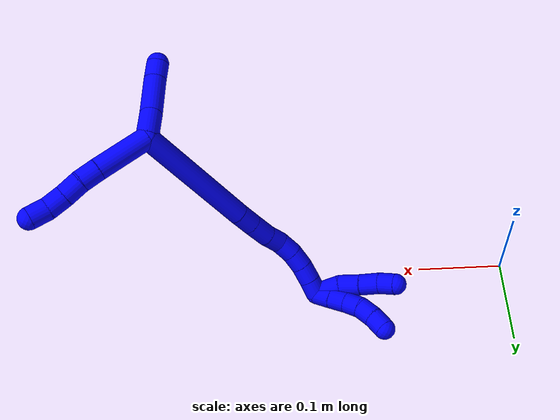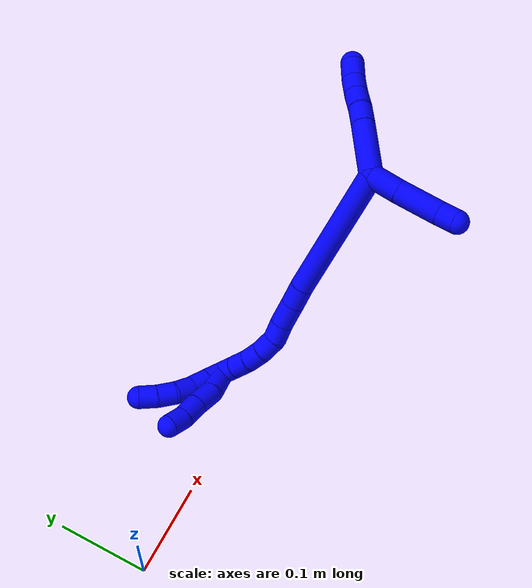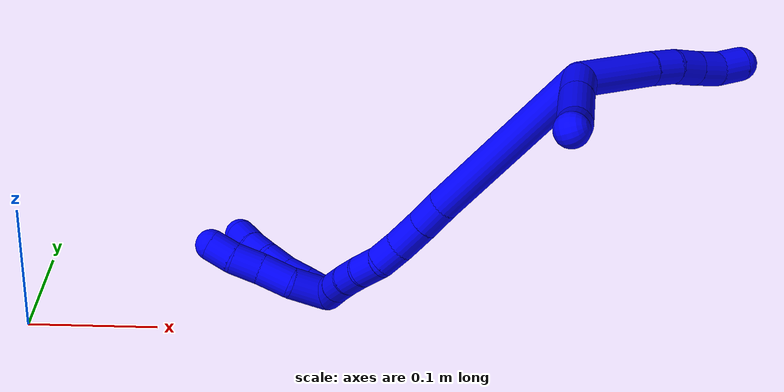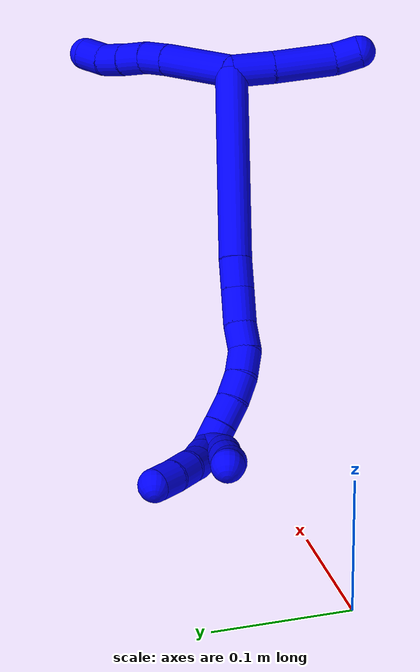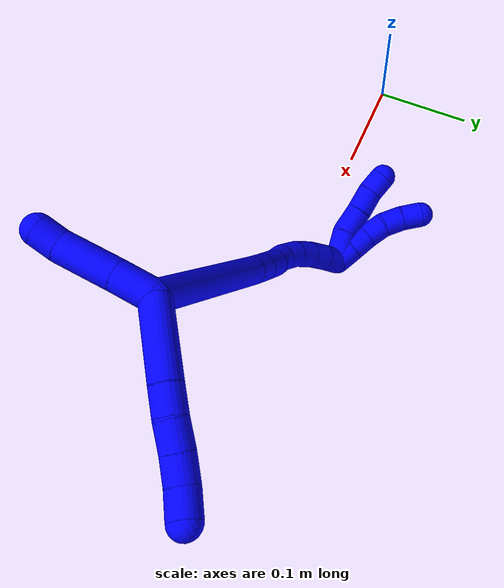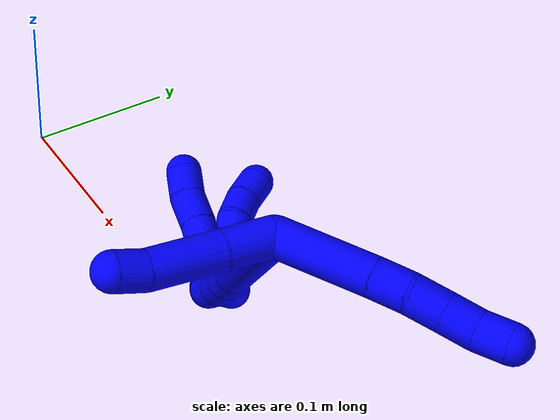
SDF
<sdf version="1.7">
 <world name="default">
  <model name="1">
   <static>0</static>
   <link name="1">
    <collision name="collision-cylinder-e_1_2_8">
     <pose>-0.022608 0.013577 0.016734 -0.681614 -0.809376 0.301505</pose>
     <geometry><cylinder><radius>0.0125</radius><length>0.062465</length></cylinder></geometry>
     <surface>
      <friction><ode><mu>1.16</mu><mu2>1.16</mu2><slip1>0</slip1><slip2>0</slip2></ode></friction>
      <contact><ode><kp>1e+06</kp><kd>1</kd><max_vel>0</max_vel><min_depth>0.001</min_depth></ode></contact>
     </surface>
    </collision>
    <visual name="visual-cylinder-e_1_2_8">
     <pose>-0.022608 0.013577 0.016734 -0.681614 -0.809376 0.301505</pose>
     <geometry><cylinder><radius>0.0125</radius><length>0.062465</length></cylinder></geometry>
     <material><ambient>0 0 1 1</ambient></material>
    </visual>
    <collision name="collision-cylinder-e_2_8_9">
     <pose>-0.053196 0.032397 0.039077 -0.751713 -0.804674 0.332753</pose>
     <geometry><cylinder><radius>0.0125</radius><length>0.022149</length></cylinder></geometry>
     <surface>
      <friction><ode><mu>1.16</mu><mu2>1.16</mu2><slip1>0</slip1><slip2>0</slip2></ode></friction>
      <contact><ode><kp>1e+06</kp><kd>1</kd><max_vel>0</max_vel><min_depth>0.001</min_depth></ode></contact>
     </surface>
    </collision>
    <visual name="visual-cylinder-e_2_8_9">
     <pose>-0.053196 0.032397 0.039077 -0.751713 -0.804674 0.332753</pose>
     <geometry><cylinder><radius>0.0125</radius><length>0.022149</length></cylinder></geometry>
     <material><ambient>0 0 1 1</ambient></material>
    </visual>
    <collision name="collision-cylinder-e_3_9_10">
     <pose>-0.069044 0.044118 0.04906 -0.976915 -0.788754 0.435317</pose>
     <geometry><cylinder><radius>0.0125</radius><length>0.022179</length></cylinder></geometry>
     <surface>
      <friction><ode><mu>1.16</mu><mu2>1.16</mu2><slip1>0</slip1><slip2>0</slip2></ode></friction>
      <contact><ode><kp>1e+06</kp><kd>1</kd><max_vel>0</max_vel><min_depth>0.001</min_depth></ode></contact>
     </surface>
    </collision>
    <visual name="visual-cylinder-e_3_9_10">
     <pose>-0.069044 0.044118 0.04906 -0.976915 -0.788754 0.435317</pose>
     <geometry><cylinder><radius>0.0125</radius><length>0.022179</length></cylinder></geometry>
     <material><ambient>0 0 1 1</ambient></material>
    </visual>
    <collision name="collision-cylinder-e_4_10_11">
     <pose>-0.084325 0.056676 0.058402 -0.885649 -0.756585 0.372584</pose>
     <geometry><cylinder><radius>0.0125</radius><length>0.0216</length></cylinder></geometry>
     <surface>
      <friction><ode><mu>1.16</mu><mu2>1.16</mu2><slip1>0</slip1><slip2>0</slip2></ode></friction>
      <contact><ode><kp>1e+06</kp><kd>1</kd><max_vel>0</max_vel><min_depth>0.001</min_depth></ode></contact>
     </surface>
    </collision>
    <visual name="visual-cylinder-e_4_10_11">
     <pose>-0.084325 0.056676 0.058402 -0.885649 -0.756585 0.372584</pose>
     <geometry><cylinder><radius>0.0125</radius><length>0.0216</length></cylinder></geometry>
     <material><ambient>0 0 1 1</ambient></material>
    </visual>
    <collision name="collision-cylinder-e_5_11_6">
     <pose>-0.099255 0.066833 0.069976 -0.552991 -0.76944 0.228786</pose>
     <geometry><cylinder><radius>0.0125</radius><length>0.021607</length></cylinder></geometry>
     <surface>
      <friction><ode><mu>1.16</mu><mu2>1.16</mu2><slip1>0</slip1><slip2>0</slip2></ode></friction>
      <contact><ode><kp>1e+06</kp><kd>1</kd><max_vel>0</max_vel><min_depth>0.001</min_depth></ode></contact>
     </surface>
    </collision>
    <visual name="visual-cylinder-e_5_11_6">
     <pose>-0.099255 0.066833 0.069976 -0.552991 -0.76944 0.228786</pose>
     <geometry><cylinder><radius>0.0125</radius><length>0.021607</length></cylinder></geometry>
     <material><ambient>0 0 1 1</ambient></material>
    </visual>
    <collision name="collision-cylinder-e_1_2_12">
     <pose>0.015794 -0.00089 0.002748 0.313049 1.38991 0.261639</pose>
     <geometry><cylinder><radius>0.0125</radius><length>0.032112</length></cylinder></geometry>
     <surface>
      <friction><ode><mu>1.16</mu><mu2>1.16</mu2><slip1>0</slip1><slip2>0</slip2></ode></friction>
      <contact><ode><kp>1e+06</kp><kd>1</kd><max_vel>0</max_vel><min_depth>0.001</min_depth></ode></contact>
     </surface>
    </collision>
    <visual name="visual-cylinder-e_1_2_12">
     <pose>0.015794 -0.00089 0.002748 0.313049 1.38991 0.261639</pose>
     <geometry><cylinder><radius>0.0125</radius><length>0.032112</length></cylinder></geometry>
     <material><ambient>0 0 1 1</ambient></material>
    </visual>
    <collision name="collision-cylinder-e_2_12_13">
     <pose>0.054817 -0.003467 0.010497 0.32549 1.34739 0.260667</pose>
     <geometry><cylinder><radius>0.0125</radius><length>0.047643</length></cylinder></geometry>
     <surface>
      <friction><ode><mu>1.16</mu><mu2>1.16</mu2><slip1>0</slip1><slip2>0</slip2></ode></friction>
      <contact><ode><kp>1e+06</kp><kd>1</kd><max_vel>0</max_vel><min_depth>0.001</min_depth></ode></contact>
     </surface>
    </collision>
    <visual name="visual-cylinder-e_2_12_13">
     <pose>0.054817 -0.003467 0.010497 0.32549 1.34739 0.260667</pose>
     <geometry><cylinder><radius>0.0125</radius><length>0.047643</length></cylinder></geometry>
     <material><ambient>0 0 1 1</ambient></material>
    </visual>
    <collision name="collision-cylinder-e_3_13_5">
     <pose>0.087476 -0.008098 0.017709 0.926416 1.19846 0.657501</pose>
     <geometry><cylinder><radius>0.0125</radius><length>0.020245</length></cylinder></geometry>
     <surface>
      <friction><ode><mu>1.16</mu><mu2>1.16</mu2><slip1>0</slip1><slip2>0</slip2></ode></friction>
      <contact><ode><kp>1e+06</kp><kd>1</kd><max_vel>0</max_vel><min_depth>0.001</min_depth></ode></contact>
     </surface>
    </collision>
    <visual name="visual-cylinder-e_3_13_5">
     <pose>0.087476 -0.008098 0.017709 0.926416 1.19846 0.657501</pose>
     <geometry><cylinder><radius>0.0125</radius><length>0.020245</length></cylinder></geometry>
     <material><ambient>0 0 1 1</ambient></material>
    </visual>
    <collision name="collision-cylinder-e_1_2_14">
     <pose>0.004584 0.031545 -0.066743 -2.70007 0.062015 -0.274685</pose>
     <geometry><cylinder><radius>0.0125</radius><length>0.147928</length></cylinder></geometry>
     <surface>
      <friction><ode><mu>1.16</mu><mu2>1.16</mu2><slip1>0</slip1><slip2>0</slip2></ode></friction>
      <contact><ode><kp>1e+06</kp><kd>1</kd><max_vel>0</max_vel><min_depth>0.001</min_depth></ode></contact>
     </surface>
    </collision>
    <visual name="visual-cylinder-e_1_2_14">
     <pose>0.004584 0.031545 -0.066743 -2.70007 0.062015 -0.274685</pose>
     <geometry><cylinder><radius>0.0125</radius><length>0.147928</length></cylinder></geometry>
     <material><ambient>0 0 1 1</ambient></material>
    </visual>
    <collision name="collision-cylinder-e_2_14_15">
     <pose>0.010535 0.06832 -0.143958 -2.67842 0.116296 -0.484044</pose>
     <geometry><cylinder><radius>0.0125</radius><length>0.023572</length></cylinder></geometry>
     <surface>
      <friction><ode><mu>1.16</mu><mu2>1.16</mu2><slip1>0</slip1><slip2>0</slip2></ode></friction>
      <contact><ode><kp>1e+06</kp><kd>1</kd><max_vel>0</max_vel><min_depth>0.001</min_depth></ode></contact>
     </surface>
    </collision>
    <visual name="visual-cylinder-e_2_14_15">
     <pose>0.010535 0.06832 -0.143958 -2.67842 0.116296 -0.484044</pose>
     <geometry><cylinder><radius>0.0125</radius><length>0.023572</length></cylinder></geometry>
     <material><ambient>0 0 1 1</ambient></material>
    </visual>
    <collision name="collision-cylinder-e_3_15_16">
     <pose>0.013372 0.079225 -0.166692 -2.70813 0.108318 -0.482816</pose>
     <geometry><cylinder><radius>0.0125</radius><length>0.02718</length></cylinder></geometry>
     <surface>
      <friction><ode><mu>1.16</mu><mu2>1.16</mu2><slip1>0</slip1><slip2>0</slip2></ode></friction>
      <contact><ode><kp>1e+06</kp><kd>1</kd><max_vel>0</max_vel><min_depth>0.001</min_depth></ode></contact>
     </surface>
    </collision>
    <visual name="visual-cylinder-e_3_15_16">
     <pose>0.013372 0.079225 -0.166692 -2.70813 0.108318 -0.482816</pose>
     <geometry><cylinder><radius>0.0125</radius><length>0.02718</length></cylinder></geometry>
     <material><ambient>0 0 1 1</ambient></material>
    </visual>
    <collision name="collision-cylinder-e_4_16_17">
     <pose>0.016986 0.088369 -0.18835 -2.78792 0.210942 -1.06963</pose>
     <geometry><cylinder><radius>0.0125</radius><length>0.020488</length></cylinder></geometry>
     <surface>
      <friction><ode><mu>1.16</mu><mu2>1.16</mu2><slip1>0</slip1><slip2>0</slip2></ode></friction>
      <contact><ode><kp>1e+06</kp><kd>1</kd><max_vel>0</max_vel><min_depth>0.001</min_depth></ode></contact>
     </surface>
    </collision>
    <visual name="visual-cylinder-e_4_16_17">
     <pose>0.016986 0.088369 -0.18835 -2.78792 0.210942 -1.06963</pose>
     <geometry><cylinder><radius>0.0125</radius><length>0.020488</length></cylinder></geometry>
     <material><ambient>0 0 1 1</ambient></material>
    </visual>
    <collision name="collision-cylinder-e_5_17_18">
     <pose>0.017885 0.094555 -0.207656 -2.87402 -0.120671 0.84378</pose>
     <geometry><cylinder><radius>0.0125</radius><length>0.0207</length></cylinder></geometry>
     <surface>
      <friction><ode><mu>1.16</mu><mu2>1.16</mu2><slip1>0</slip1><slip2>0</slip2></ode></friction>
      <contact><ode><kp>1e+06</kp><kd>1</kd><max_vel>0</max_vel><min_depth>0.001</min_depth></ode></contact>
     </surface>
    </collision>
    <visual name="visual-cylinder-e_5_17_18">
     <pose>0.017885 0.094555 -0.207656 -2.87402 -0.120671 0.84378</pose>
     <geometry><cylinder><radius>0.0125</radius><length>0.0207</length></cylinder></geometry>
     <material><ambient>0 0 1 1</ambient></material>
    </visual>
    <collision name="collision-cylinder-e_6_18_19">
     <pose>0.013758 0.100844 -0.226488 -2.76076 -0.291226 1.30078</pose>
     <geometry><cylinder><radius>0.0125</radius><length>0.020068</length></cylinder></geometry>
     <surface>
      <friction><ode><mu>1.16</mu><mu2>1.16</mu2><slip1>0</slip1><slip2>0</slip2></ode></friction>
      <contact><ode><kp>1e+06</kp><kd>1</kd><max_vel>0</max_vel><min_depth>0.001</min_depth></ode></contact>
     </surface>
    </collision>
    <visual name="visual-cylinder-e_6_18_19">
     <pose>0.013758 0.100844 -0.226488 -2.76076 -0.291226 1.30078</pose>
     <geometry><cylinder><radius>0.0125</radius><length>0.020068</length></cylinder></geometry>
     <material><ambient>0 0 1 1</ambient></material>
    </visual>
    <collision name="collision-cylinder-e_7_19_20">
     <pose>0.006892 0.108605 -0.243598 -2.66871 -0.408965 1.42134</pose>
     <geometry><cylinder><radius>0.0125</radius><length>0.020046</length></cylinder></geometry>
     <surface>
      <friction><ode><mu>1.16</mu><mu2>1.16</mu2><slip1>0</slip1><slip2>0</slip2></ode></friction>
      <contact><ode><kp>1e+06</kp><kd>1</kd><max_vel>0</max_vel><min_depth>0.001</min_depth></ode></contact>
     </surface>
    </collision>
    <visual name="visual-cylinder-e_7_19_20">
     <pose>0.006892 0.108605 -0.243598 -2.66871 -0.408965 1.42134</pose>
     <geometry><cylinder><radius>0.0125</radius><length>0.020046</length></cylinder></geometry>
     <material><ambient>0 0 1 1</ambient></material>
    </visual>
    <collision name="collision-cylinder-e_8_20_1">
     <pose>-0.001137 0.117382 -0.259708 -2.61663 -0.415834 1.33129</pose>
     <geometry><cylinder><radius>0.0125</radius><length>0.020018</length></cylinder></geometry>
     <surface>
      <friction><ode><mu>1.16</mu><mu2>1.16</mu2><slip1>0</slip1><slip2>0</slip2></ode></friction>
      <contact><ode><kp>1e+06</kp><kd>1</kd><max_vel>0</max_vel><min_depth>0.001</min_depth></ode></contact>
     </surface>
    </collision>
    <visual name="visual-cylinder-e_8_20_1">
     <pose>-0.001137 0.117382 -0.259708 -2.61663 -0.415834 1.33129</pose>
     <geometry><cylinder><radius>0.0125</radius><length>0.020018</length></cylinder></geometry>
     <material><ambient>0 0 1 1</ambient></material>
    </visual>
    <collision name="collision-cylinder-e_1_1_21">
     <pose>-0.008011 0.116315 -0.275377 2.51088 -0.286943 -0.833714</pose>
     <geometry><cylinder><radius>0.0125</radius><length>0.02</length></cylinder></geometry>
     <surface>
      <friction><ode><mu>1.16</mu><mu2>1.16</mu2><slip1>0</slip1><slip2>0</slip2></ode></friction>
      <contact><ode><kp>1e+06</kp><kd>1</kd><max_vel>0</max_vel><min_depth>0.001</min_depth></ode></contact>
     </surface>
    </collision>
    <visual name="visual-cylinder-e_1_1_21">
     <pose>-0.008011 0.116315 -0.275377 2.51088 -0.286943 -0.833714</pose>
     <geometry><cylinder><radius>0.0125</radius><length>0.02</length></cylinder></geometry>
     <material><ambient>0 0 1 1</ambient></material>
    </visual>
    <collision name="collision-cylinder-e_2_21_22">
     <pose>-0.01348 0.105056 -0.290975 2.52181 -0.267115 -0.794559</pose>
     <geometry><cylinder><radius>0.0125</radius><length>0.02</length></cylinder></geometry>
     <surface>
      <friction><ode><mu>1.16</mu><mu2>1.16</mu2><slip1>0</slip1><slip2>0</slip2></ode></friction>
      <contact><ode><kp>1e+06</kp><kd>1</kd><max_vel>0</max_vel><min_depth>0.001</min_depth></ode></contact>
     </surface>
    </collision>
    <visual name="visual-cylinder-e_2_21_22">
     <pose>-0.01348 0.105056 -0.290975 2.52181 -0.267115 -0.794559</pose>
     <geometry><cylinder><radius>0.0125</radius><length>0.02</length></cylinder></geometry>
     <material><ambient>0 0 1 1</ambient></material>
    </visual>
    <collision name="collision-cylinder-e_3_22_23">
     <pose>-0.01993 0.09349 -0.305891 2.44056 -0.390945 -0.992683</pose>
     <geometry><cylinder><radius>0.0125</radius><length>0.02</length></cylinder></geometry>
     <surface>
      <friction><ode><mu>1.16</mu><mu2>1.16</mu2><slip1>0</slip1><slip2>0</slip2></ode></friction>
      <contact><ode><kp>1e+06</kp><kd>1</kd><max_vel>0</max_vel><min_depth>0.001</min_depth></ode></contact>
     </surface>
    </collision>
    <visual name="visual-cylinder-e_3_22_23">
     <pose>-0.01993 0.09349 -0.305891 2.44056 -0.390945 -0.992683</pose>
     <geometry><cylinder><radius>0.0125</radius><length>0.02</length></cylinder></geometry>
     <material><ambient>0 0 1 1</ambient></material>
    </visual>
    <collision name="collision-cylinder-e_4_23_24">
     <pose>-0.029347 0.083673 -0.320286 2.65757 -0.595119 -1.7861</pose>
     <geometry><cylinder><radius>0.0125</radius><length>0.02</length></cylinder></geometry>
     <surface>
      <friction><ode><mu>1.16</mu><mu2>1.16</mu2><slip1>0</slip1><slip2>0</slip2></ode></friction>
      <contact><ode><kp>1e+06</kp><kd>1</kd><max_vel>0</max_vel><min_depth>0.001</min_depth></ode></contact>
     </surface>
    </collision>
    <visual name="visual-cylinder-e_4_23_24">
     <pose>-0.029347 0.083673 -0.320286 2.65757 -0.595119 -1.7861</pose>
     <geometry><cylinder><radius>0.0125</radius><length>0.02</length></cylinder></geometry>
     <material><ambient>0 0 1 1</ambient></material>
    </visual>
    <collision name="collision-cylinder-e_5_24_4">
     <pose>-0.04172 0.076825 -0.334342 2.7227 -0.743285 -2.14301</pose>
     <geometry><cylinder><radius>0.0125</radius><length>0.02</length></cylinder></geometry>
     <surface>
      <friction><ode><mu>1.16</mu><mu2>1.16</mu2><slip1>0</slip1><slip2>0</slip2></ode></friction>
      <contact><ode><kp>1e+06</kp><kd>1</kd><max_vel>0</max_vel><min_depth>0.001</min_depth></ode></contact>
     </surface>
    </collision>
    <visual name="visual-cylinder-e_5_24_4">
     <pose>-0.04172 0.076825 -0.334342 2.7227 -0.743285 -2.14301</pose>
     <geometry><cylinder><radius>0.0125</radius><length>0.02</length></cylinder></geometry>
     <material><ambient>0 0 1 1</ambient></material>
    </visual>
    <collision name="collision-cylinder-e_1_1_25">
     <pose>-0.000784 0.110793 -0.277292 2.2835 0.289239 0.616421</pose>
     <geometry><cylinder><radius>0.0125</radius><length>0.030828</length></cylinder></geometry>
     <surface>
      <friction><ode><mu>1.16</mu><mu2>1.16</mu2><slip1>0</slip1><slip2>0</slip2></ode></friction>
      <contact><ode><kp>1e+06</kp><kd>1</kd><max_vel>0</max_vel><min_depth>0.001</min_depth></ode></contact>
     </surface>
    </collision>
    <visual name="visual-cylinder-e_1_1_25">
     <pose>-0.000784 0.110793 -0.277292 2.2835 0.289239 0.616421</pose>
     <geometry><cylinder><radius>0.0125</radius><length>0.030828</length></cylinder></geometry>
     <material><ambient>0 0 1 1</ambient></material>
    </visual>
    <collision name="collision-cylinder-e_2_25_26">
     <pose>0.00329 0.090704 -0.296202 2.3748 -0.025119 -0.062258</pose>
     <geometry><cylinder><radius>0.0125</radius><length>0.025697</length></cylinder></geometry>
     <surface>
      <friction><ode><mu>1.16</mu><mu2>1.16</mu2><slip1>0</slip1><slip2>0</slip2></ode></friction>
      <contact><ode><kp>1e+06</kp><kd>1</kd><max_vel>0</max_vel><min_depth>0.001</min_depth></ode></contact>
     </surface>
    </collision>
    <visual name="visual-cylinder-e_2_25_26">
     <pose>0.00329 0.090704 -0.296202 2.3748 -0.025119 -0.062258</pose>
     <geometry><cylinder><radius>0.0125</radius><length>0.025697</length></cylinder></geometry>
     <material><ambient>0 0 1 1</ambient></material>
    </visual>
    <collision name="collision-cylinder-e_3_26_27">
     <pose>0.003592 0.073895 -0.313862 2.38766 0.054137 0.136564</pose>
     <geometry><cylinder><radius>0.0125</radius><length>0.023108</length></cylinder></geometry>
     <surface>
      <friction><ode><mu>1.16</mu><mu2>1.16</mu2><slip1>0</slip1><slip2>0</slip2></ode></friction>
      <contact><ode><kp>1e+06</kp><kd>1</kd><max_vel>0</max_vel><min_depth>0.001</min_depth></ode></contact>
     </surface>
    </collision>
    <visual name="visual-cylinder-e_3_26_27">
     <pose>0.003592 0.073895 -0.313862 2.38766 0.054137 0.136564</pose>
     <geometry><cylinder><radius>0.0125</radius><length>0.023108</length></cylinder></geometry>
     <material><ambient>0 0 1 1</ambient></material>
    </visual>
    <collision name="collision-cylinder-e_4_27_3">
     <pose>0.002669 0.05884 -0.329349 2.35053 -0.15261 -0.362199</pose>
     <geometry><cylinder><radius>0.0125</radius><length>0.020368</length></cylinder></geometry>
     <surface>
      <friction><ode><mu>1.16</mu><mu2>1.16</mu2><slip1>0</slip1><slip2>0</slip2></ode></friction>
      <contact><ode><kp>1e+06</kp><kd>1</kd><max_vel>0</max_vel><min_depth>0.001</min_depth></ode></contact>
     </surface>
    </collision>
    <visual name="visual-cylinder-e_4_27_3">
     <pose>0.002669 0.05884 -0.329349 2.35053 -0.15261 -0.362199</pose>
     <geometry><cylinder><radius>0.0125</radius><length>0.020368</length></cylinder></geometry>
     <material><ambient>0 0 1 1</ambient></material>
    </visual>
    <collision name="collision-sphere-3">
     <pose>0.001121 0.051683 -0.336426 0 -0 0</pose>
     <geometry><sphere><radius>0.0125</radius></sphere></geometry>
     <surface>
      <friction><ode><mu>1.16</mu><mu2>1.16</mu2><slip1>0</slip1><slip2>0</slip2></ode></friction>
      <contact><ode><kp>1e+06</kp><kd>1</kd><max_vel>0</max_vel><min_depth>0.001</min_depth></ode></contact>
     </surface>
    </collision>
    <visual name="visual-sphere-3">
     <pose>0.001121 0.051683 -0.336426 0 -0 0</pose>
     <geometry><sphere><radius>0.0125</radius></sphere></geometry>
     <material><ambient>0 0 1 1</ambient></material>
    </visual>
    <collision name="collision-sphere-27">
     <pose>0.004217 0.065998 -0.322273 0 -0 0</pose>
     <geometry><sphere><radius>0.0125</radius></sphere></geometry>
     <surface>
      <friction><ode><mu>1.16</mu><mu2>1.16</mu2><slip1>0</slip1><slip2>0</slip2></ode></friction>
      <contact><ode><kp>1e+06</kp><kd>1</kd><max_vel>0</max_vel><min_depth>0.001</min_depth></ode></contact>
     </surface>
    </collision>
    <visual name="visual-sphere-27">
     <pose>0.004217 0.065998 -0.322273 0 -0 0</pose>
     <geometry><sphere><radius>0.0125</radius></sphere></geometry>
     <material><ambient>0 0 1 1</ambient></material>
    </visual>
    <collision name="collision-sphere-26">
     <pose>0.002967 0.081792 -0.305451 0 -0 0</pose>
     <geometry><sphere><radius>0.0125</radius></sphere></geometry>
     <surface>
      <friction><ode><mu>1.16</mu><mu2>1.16</mu2><slip1>0</slip1><slip2>0</slip2></ode></friction>
      <contact><ode><kp>1e+06</kp><kd>1</kd><max_vel>0</max_vel><min_depth>0.001</min_depth></ode></contact>
     </surface>
    </collision>
    <visual name="visual-sphere-26">
     <pose>0.002967 0.081792 -0.305451 0 -0 0</pose>
     <geometry><sphere><radius>0.0125</radius></sphere></geometry>
     <material><ambient>0 0 1 1</ambient></material>
    </visual>
    <collision name="collision-sphere-25">
     <pose>0.003612 0.099616 -0.286952 0 -0 0</pose>
     <geometry><sphere><radius>0.0125</radius></sphere></geometry>
     <surface>
      <friction><ode><mu>1.16</mu><mu2>1.16</mu2><slip1>0</slip1><slip2>0</slip2></ode></friction>
      <contact><ode><kp>1e+06</kp><kd>1</kd><max_vel>0</max_vel><min_depth>0.001</min_depth></ode></contact>
     </surface>
    </collision>
    <visual name="visual-sphere-25">
     <pose>0.003612 0.099616 -0.286952 0 -0 0</pose>
     <geometry><sphere><radius>0.0125</radius></sphere></geometry>
     <material><ambient>0 0 1 1</ambient></material>
    </visual>
    <collision name="collision-sphere-4">
     <pose>-0.048487 0.073831 -0.341068 0 -0 0</pose>
     <geometry><sphere><radius>0.0125</radius></sphere></geometry>
     <surface>
      <friction><ode><mu>1.16</mu><mu2>1.16</mu2><slip1>0</slip1><slip2>0</slip2></ode></friction>
      <contact><ode><kp>1e+06</kp><kd>1</kd><max_vel>0</max_vel><min_depth>0.001</min_depth></ode></contact>
     </surface>
    </collision>
    <visual name="visual-sphere-4">
     <pose>-0.048487 0.073831 -0.341068 0 -0 0</pose>
     <geometry><sphere><radius>0.0125</radius></sphere></geometry>
     <material><ambient>0 0 1 1</ambient></material>
    </visual>
    <collision name="collision-sphere-24">
     <pose>-0.034953 0.07982 -0.327616 0 -0 0</pose>
     <geometry><sphere><radius>0.0125</radius></sphere></geometry>
     <surface>
      <friction><ode><mu>1.16</mu><mu2>1.16</mu2><slip1>0</slip1><slip2>0</slip2></ode></friction>
      <contact><ode><kp>1e+06</kp><kd>1</kd><max_vel>0</max_vel><min_depth>0.001</min_depth></ode></contact>
     </surface>
    </collision>
    <visual name="visual-sphere-24">
     <pose>-0.034953 0.07982 -0.327616 0 -0 0</pose>
     <geometry><sphere><radius>0.0125</radius></sphere></geometry>
     <material><ambient>0 0 1 1</ambient></material>
    </visual>
    <collision name="collision-sphere-23">
     <pose>-0.023741 0.087527 -0.312956 0 -0 0</pose>
     <geometry><sphere><radius>0.0125</radius></sphere></geometry>
     <surface>
      <friction><ode><mu>1.16</mu><mu2>1.16</mu2><slip1>0</slip1><slip2>0</slip2></ode></friction>
      <contact><ode><kp>1e+06</kp><kd>1</kd><max_vel>0</max_vel><min_depth>0.001</min_depth></ode></contact>
     </surface>
    </collision>
    <visual name="visual-sphere-23">
     <pose>-0.023741 0.087527 -0.312956 0 -0 0</pose>
     <geometry><sphere><radius>0.0125</radius></sphere></geometry>
     <material><ambient>0 0 1 1</ambient></material>
    </visual>
    <collision name="collision-sphere-22">
     <pose>-0.01612 0.099453 -0.298826 0 -0 0</pose>
     <geometry><sphere><radius>0.0125</radius></sphere></geometry>
     <surface>
      <friction><ode><mu>1.16</mu><mu2>1.16</mu2><slip1>0</slip1><slip2>0</slip2></ode></friction>
      <contact><ode><kp>1e+06</kp><kd>1</kd><max_vel>0</max_vel><min_depth>0.001</min_depth></ode></contact>
     </surface>
    </collision>
    <visual name="visual-sphere-22">
     <pose>-0.01612 0.099453 -0.298826 0 -0 0</pose>
     <geometry><sphere><radius>0.0125</radius></sphere></geometry>
     <material><ambient>0 0 1 1</ambient></material>
    </visual>
    <collision name="collision-sphere-21">
     <pose>-0.010841 0.110659 -0.283123 0 -0 0</pose>
     <geometry><sphere><radius>0.0125</radius></sphere></geometry>
     <surface>
      <friction><ode><mu>1.16</mu><mu2>1.16</mu2><slip1>0</slip1><slip2>0</slip2></ode></friction>
      <contact><ode><kp>1e+06</kp><kd>1</kd><max_vel>0</max_vel><min_depth>0.001</min_depth></ode></contact>
     </surface>
    </collision>
    <visual name="visual-sphere-21">
     <pose>-0.010841 0.110659 -0.283123 0 -0 0</pose>
     <geometry><sphere><radius>0.0125</radius></sphere></geometry>
     <material><ambient>0 0 1 1</ambient></material>
    </visual>
    <collision name="collision-sphere-1">
     <pose>-0.00518 0.121971 -0.267632 0 -0 0</pose>
     <geometry><sphere><radius>0.0125</radius></sphere></geometry>
     <surface>
      <friction><ode><mu>1.16</mu><mu2>1.16</mu2><slip1>0</slip1><slip2>0</slip2></ode></friction>
      <contact><ode><kp>1e+06</kp><kd>1</kd><max_vel>0</max_vel><min_depth>0.001</min_depth></ode></contact>
     </surface>
    </collision>
    <visual name="visual-sphere-1">
     <pose>-0.00518 0.121971 -0.267632 0 -0 0</pose>
     <geometry><sphere><radius>0.0125</radius></sphere></geometry>
     <material><ambient>0 0 1 1</ambient></material>
    </visual>
    <collision name="collision-sphere-6">
     <pose>-0.106772 0.070909 0.076579 0 -0 0</pose>
     <geometry><sphere><radius>0.0125</radius></sphere></geometry>
     <surface>
      <friction><ode><mu>1.16</mu><mu2>1.16</mu2><slip1>0</slip1><slip2>0</slip2></ode></friction>
      <contact><ode><kp>1e+06</kp><kd>1</kd><max_vel>0</max_vel><min_depth>0.001</min_depth></ode></contact>
     </surface>
    </collision>
    <visual name="visual-sphere-6">
     <pose>-0.106772 0.070909 0.076579 0 -0 0</pose>
     <geometry><sphere><radius>0.0125</radius></sphere></geometry>
     <material><ambient>0 0 1 1</ambient></material>
    </visual>
    <collision name="collision-sphere-11">
     <pose>-0.091739 0.062757 0.063372 0 -0 0</pose>
     <geometry><sphere><radius>0.0125</radius></sphere></geometry>
     <surface>
      <friction><ode><mu>1.16</mu><mu2>1.16</mu2><slip1>0</slip1><slip2>0</slip2></ode></friction>
      <contact><ode><kp>1e+06</kp><kd>1</kd><max_vel>0</max_vel><min_depth>0.001</min_depth></ode></contact>
     </surface>
    </collision>
    <visual name="visual-sphere-11">
     <pose>-0.091739 0.062757 0.063372 0 -0 0</pose>
     <geometry><sphere><radius>0.0125</radius></sphere></geometry>
     <material><ambient>0 0 1 1</ambient></material>
    </visual>
    <collision name="collision-sphere-10">
     <pose>-0.076912 0.050595 0.053433 0 -0 0</pose>
     <geometry><sphere><radius>0.0125</radius></sphere></geometry>
     <surface>
      <friction><ode><mu>1.16</mu><mu2>1.16</mu2><slip1>0</slip1><slip2>0</slip2></ode></friction>
      <contact><ode><kp>1e+06</kp><kd>1</kd><max_vel>0</max_vel><min_depth>0.001</min_depth></ode></contact>
     </surface>
    </collision>
    <visual name="visual-sphere-10">
     <pose>-0.076912 0.050595 0.053433 0 -0 0</pose>
     <geometry><sphere><radius>0.0125</radius></sphere></geometry>
     <material><ambient>0 0 1 1</ambient></material>
    </visual>
    <collision name="collision-sphere-9">
     <pose>-0.061177 0.037641 0.044687 0 -0 0</pose>
     <geometry><sphere><radius>0.0125</radius></sphere></geometry>
     <surface>
      <friction><ode><mu>1.16</mu><mu2>1.16</mu2><slip1>0</slip1><slip2>0</slip2></ode></friction>
      <contact><ode><kp>1e+06</kp><kd>1</kd><max_vel>0</max_vel><min_depth>0.001</min_depth></ode></contact>
     </surface>
    </collision>
    <visual name="visual-sphere-9">
     <pose>-0.061177 0.037641 0.044687 0 -0 0</pose>
     <geometry><sphere><radius>0.0125</radius></sphere></geometry>
     <material><ambient>0 0 1 1</ambient></material>
    </visual>
    <collision name="collision-sphere-2">
     <geometry><sphere><radius>0.0125</radius></sphere></geometry>
     <surface>
      <friction><ode><mu>1.16</mu><mu2>1.16</mu2><slip1>0</slip1><slip2>0</slip2></ode></friction>
      <contact><ode><kp>1e+06</kp><kd>1</kd><max_vel>0</max_vel><min_depth>0.001</min_depth></ode></contact>
     </surface>
    </collision>
    <visual name="visual-sphere-2">
     <geometry><sphere><radius>0.0125</radius></sphere></geometry>
     <material><ambient>0 0 1 1</ambient></material>
    </visual>
    <collision name="collision-sphere-19">
     <pose>0.010877 0.104416 -0.235411 0 -0 0</pose>
     <geometry><sphere><radius>0.0125</radius></sphere></geometry>
     <surface>
      <friction><ode><mu>1.16</mu><mu2>1.16</mu2><slip1>0</slip1><slip2>0</slip2></ode></friction>
      <contact><ode><kp>1e+06</kp><kd>1</kd><max_vel>0</max_vel><min_depth>0.001</min_depth></ode></contact>
     </surface>
    </collision>
    <visual name="visual-sphere-19">
     <pose>0.010877 0.104416 -0.235411 0 -0 0</pose>
     <geometry><sphere><radius>0.0125</radius></sphere></geometry>
     <material><ambient>0 0 1 1</ambient></material>
    </visual>
    <collision name="collision-sphere-8">
     <pose>-0.045216 0.027154 0.033468 0 -0 0</pose>
     <geometry><sphere><radius>0.0125</radius></sphere></geometry>
     <surface>
      <friction><ode><mu>1.16</mu><mu2>1.16</mu2><slip1>0</slip1><slip2>0</slip2></ode></friction>
      <contact><ode><kp>1e+06</kp><kd>1</kd><max_vel>0</max_vel><min_depth>0.001</min_depth></ode></contact>
     </surface>
    </collision>
    <visual name="visual-sphere-8">
     <pose>-0.045216 0.027154 0.033468 0 -0 0</pose>
     <geometry><sphere><radius>0.0125</radius></sphere></geometry>
     <material><ambient>0 0 1 1</ambient></material>
    </visual>
    <collision name="collision-sphere-12">
     <pose>0.031588 -0.001779 0.005496 0 -0 0</pose>
     <geometry><sphere><radius>0.0125</radius></sphere></geometry>
     <surface>
      <friction><ode><mu>1.16</mu><mu2>1.16</mu2><slip1>0</slip1><slip2>0</slip2></ode></friction>
      <contact><ode><kp>1e+06</kp><kd>1</kd><max_vel>0</max_vel><min_depth>0.001</min_depth></ode></contact>
     </surface>
    </collision>
    <visual name="visual-sphere-12">
     <pose>0.031588 -0.001779 0.005496 0 -0 0</pose>
     <geometry><sphere><radius>0.0125</radius></sphere></geometry>
     <material><ambient>0 0 1 1</ambient></material>
    </visual>
    <collision name="collision-sphere-13">
     <pose>0.078047 -0.005154 0.015497 0 -0 0</pose>
     <geometry><sphere><radius>0.0125</radius></sphere></geometry>
     <surface>
      <friction><ode><mu>1.16</mu><mu2>1.16</mu2><slip1>0</slip1><slip2>0</slip2></ode></friction>
      <contact><ode><kp>1e+06</kp><kd>1</kd><max_vel>0</max_vel><min_depth>0.001</min_depth></ode></contact>
     </surface>
    </collision>
    <visual name="visual-sphere-13">
     <pose>0.078047 -0.005154 0.015497 0 -0 0</pose>
     <geometry><sphere><radius>0.0125</radius></sphere></geometry>
     <material><ambient>0 0 1 1</ambient></material>
    </visual>
    <collision name="collision-sphere-5">
     <pose>0.096905 -0.011042 0.019921 0 -0 0</pose>
     <geometry><sphere><radius>0.0125</radius></sphere></geometry>
     <surface>
      <friction><ode><mu>1.16</mu><mu2>1.16</mu2><slip1>0</slip1><slip2>0</slip2></ode></friction>
      <contact><ode><kp>1e+06</kp><kd>1</kd><max_vel>0</max_vel><min_depth>0.001</min_depth></ode></contact>
     </surface>
    </collision>
    <visual name="visual-sphere-5">
     <pose>0.096905 -0.011042 0.019921 0 -0 0</pose>
     <geometry><sphere><radius>0.0125</radius></sphere></geometry>
     <material><ambient>0 0 1 1</ambient></material>
    </visual>
    <collision name="collision-sphere-14">
     <pose>0.009168 0.06309 -0.133485 0 -0 0</pose>
     <geometry><sphere><radius>0.0125</radius></sphere></geometry>
     <surface>
      <friction><ode><mu>1.16</mu><mu2>1.16</mu2><slip1>0</slip1><slip2>0</slip2></ode></friction>
      <contact><ode><kp>1e+06</kp><kd>1</kd><max_vel>0</max_vel><min_depth>0.001</min_depth></ode></contact>
     </surface>
    </collision>
    <visual name="visual-sphere-14">
     <pose>0.009168 0.06309 -0.133485 0 -0 0</pose>
     <geometry><sphere><radius>0.0125</radius></sphere></geometry>
     <material><ambient>0 0 1 1</ambient></material>
    </visual>
    <collision name="collision-sphere-15">
     <pose>0.011903 0.07355 -0.154431 0 -0 0</pose>
     <geometry><sphere><radius>0.0125</radius></sphere></geometry>
     <surface>
      <friction><ode><mu>1.16</mu><mu2>1.16</mu2><slip1>0</slip1><slip2>0</slip2></ode></friction>
      <contact><ode><kp>1e+06</kp><kd>1</kd><max_vel>0</max_vel><min_depth>0.001</min_depth></ode></contact>
     </surface>
    </collision>
    <visual name="visual-sphere-15">
     <pose>0.011903 0.07355 -0.154431 0 -0 0</pose>
     <geometry><sphere><radius>0.0125</radius></sphere></geometry>
     <material><ambient>0 0 1 1</ambient></material>
    </visual>
    <collision name="collision-sphere-16">
     <pose>0.014841 0.084899 -0.178953 0 -0 0</pose>
     <geometry><sphere><radius>0.0125</radius></sphere></geometry>
     <surface>
      <friction><ode><mu>1.16</mu><mu2>1.16</mu2><slip1>0</slip1><slip2>0</slip2></ode></friction>
      <contact><ode><kp>1e+06</kp><kd>1</kd><max_vel>0</max_vel><min_depth>0.001</min_depth></ode></contact>
     </surface>
    </collision>
    <visual name="visual-sphere-16">
     <pose>0.014841 0.084899 -0.178953 0 -0 0</pose>
     <geometry><sphere><radius>0.0125</radius></sphere></geometry>
     <material><ambient>0 0 1 1</ambient></material>
    </visual>
    <collision name="collision-sphere-17">
     <pose>0.019131 0.091838 -0.197747 0 -0 0</pose>
     <geometry><sphere><radius>0.0125</radius></sphere></geometry>
     <surface>
      <friction><ode><mu>1.16</mu><mu2>1.16</mu2><slip1>0</slip1><slip2>0</slip2></ode></friction>
      <contact><ode><kp>1e+06</kp><kd>1</kd><max_vel>0</max_vel><min_depth>0.001</min_depth></ode></contact>
     </surface>
    </collision>
    <visual name="visual-sphere-17">
     <pose>0.019131 0.091838 -0.197747 0 -0 0</pose>
     <geometry><sphere><radius>0.0125</radius></sphere></geometry>
     <material><ambient>0 0 1 1</ambient></material>
    </visual>
    <collision name="collision-sphere-18">
     <pose>0.016639 0.097271 -0.217565 0 -0 0</pose>
     <geometry><sphere><radius>0.0125</radius></sphere></geometry>
     <surface>
      <friction><ode><mu>1.16</mu><mu2>1.16</mu2><slip1>0</slip1><slip2>0</slip2></ode></friction>
      <contact><ode><kp>1e+06</kp><kd>1</kd><max_vel>0</max_vel><min_depth>0.001</min_depth></ode></contact>
     </surface>
    </collision>
    <visual name="visual-sphere-18">
     <pose>0.016639 0.097271 -0.217565 0 -0 0</pose>
     <geometry><sphere><radius>0.0125</radius></sphere></geometry>
     <material><ambient>0 0 1 1</ambient></material>
    </visual>
    <collision name="collision-sphere-20">
     <pose>0.002906 0.112793 -0.251785 0 -0 0</pose>
     <geometry><sphere><radius>0.0125</radius></sphere></geometry>
     <surface>
      <friction><ode><mu>1.16</mu><mu2>1.16</mu2><slip1>0</slip1><slip2>0</slip2></ode></friction>
      <contact><ode><kp>1e+06</kp><kd>1</kd><max_vel>0</max_vel><min_depth>0.001</min_depth></ode></contact>
     </surface>
    </collision>
    <visual name="visual-sphere-20">
     <pose>0.002906 0.112793 -0.251785 0 -0 0</pose>
     <geometry><sphere><radius>0.0125</radius></sphere></geometry>
     <material><ambient>0 0 1 1</ambient></material>
    </visual>
    <inertial>
     <pose>-0.003801 0.055684 -0.126027 0 -0 0</pose>
     <mass>0.75</mass>
     <inertia>
      <ixx>0.000232</ixx>
      <ixy>0</ixy>
      <ixz>0</ixz>
      <iyy>-0.000271</iyy>
      <iyz>0</iyz>
      <izz>-0.000157</izz>
     </inertia>
    </inertial>
   </link>
   <pose>0.411111 -0.038787 0.231659 -1.14753 0.097282 -1.81523</pose>
  </model>
 </world>
</sdf>
